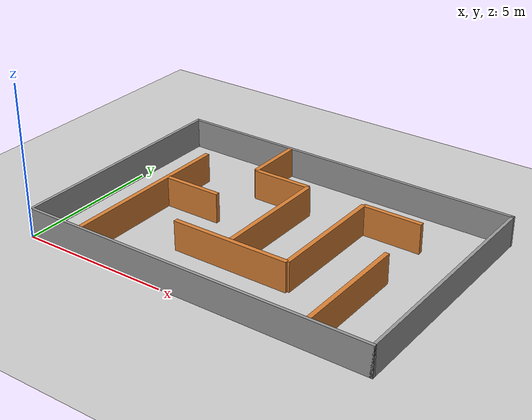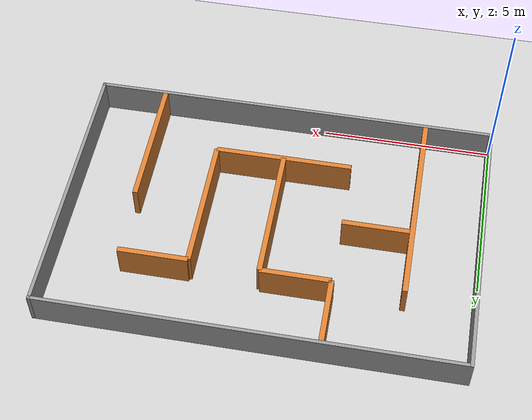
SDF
<?xml version="1.0" ?>
<sdf version="1.7">
  <world name="maze">
    <gravity>0 0 -9.8</gravity>
    <include><uri>model://ground_plane</uri></include>
    <include><uri>model://sun</uri></include>

    <!-- Outer boundary (grey) -->
    <model name="outer_s"><static>true</static><pose>6.0 0.05 0.5 0 0 0</pose><link name="l"><collision name="c"><geometry><box><size>12.0 0.10 1.0</size></box></geometry></collision><visual name="v"><geometry><box><size>12.0 0.10 1.0</size></box></geometry><material><ambient>0.6 0.6 0.6 1</ambient><diffuse>0.6 0.6 0.6 1</diffuse></material></visual></link></model>
    <model name="outer_n"><static>true</static><pose>6.0 7.95 0.5 0 0 0</pose><link name="l"><collision name="c"><geometry><box><size>12.0 0.10 1.0</size></box></geometry></collision><visual name="v"><geometry><box><size>12.0 0.10 1.0</size></box></geometry><material><ambient>0.6 0.6 0.6 1</ambient><diffuse>0.6 0.6 0.6 1</diffuse></material></visual></link></model>
    <model name="outer_w"><static>true</static><pose>0.05 4.0 0.5 0 0 0</pose><link name="l"><collision name="c"><geometry><box><size>0.10 8.0 1.0</size></box></geometry></collision><visual name="v"><geometry><box><size>0.10 8.0 1.0</size></box></geometry><material><ambient>0.6 0.6 0.6 1</ambient><diffuse>0.6 0.6 0.6 1</diffuse></material></visual></link></model>
    <model name="outer_e"><static>true</static><pose>11.95 4.0 0.5 0 0 0</pose><link name="l"><collision name="c"><geometry><box><size>0.10 8.0 1.0</size></box></geometry></collision><visual name="v"><geometry><box><size>0.10 8.0 1.0</size></box></geometry><material><ambient>0.6 0.6 0.6 1</ambient><diffuse>0.6 0.6 0.6 1</diffuse></material></visual></link></model>

    <model name="h_y2"><static>true</static><pose>6.0 2.0 0.5 0 0 0</pose>
      <link name="l"><collision name="c"><geometry><box><size>4.0 0.15 1.0</size></box></geometry></collision>
      <visual name="v"><geometry><box><size>4.0 0.15 1.0</size></box></geometry>
        <material><ambient>0.85 0.50 0.20 1</ambient><diffuse>0.85 0.50 0.20 1</diffuse></material></visual></link></model>

    <model name="h_y4"><static>true</static><pose>3.0 4.0 0.5 0 0 0</pose>
      <link name="l"><collision name="c"><geometry><box><size>2.0 0.15 1.0</size></box></geometry></collision>
      <visual name="v"><geometry><box><size>2.0 0.15 1.0</size></box></geometry>
        <material><ambient>0.85 0.50 0.20 1</ambient><diffuse>0.85 0.50 0.20 1</diffuse></material></visual></link></model>

    <model name="h_y6_a"><static>true</static><pose>5.0 6.0 0.5 0 0 0</pose>
      <link name="l"><collision name="c"><geometry><box><size>2.0 0.15 1.0</size></box></geometry></collision>
      <visual name="v"><geometry><box><size>2.0 0.15 1.0</size></box></geometry>
        <material><ambient>0.85 0.50 0.20 1</ambient><diffuse>0.85 0.50 0.20 1</diffuse></material></visual></link></model>

    <model name="h_y6_b"><static>true</static><pose>9.0 6.0 0.5 0 0 0</pose>
      <link name="l"><collision name="c"><geometry><box><size>2.0 0.15 1.0</size></box></geometry></collision>
      <visual name="v"><geometry><box><size>2.0 0.15 1.0</size></box></geometry>
        <material><ambient>0.85 0.50 0.20 1</ambient><diffuse>0.85 0.50 0.20 1</diffuse></material></visual></link></model>

    <model name="v_x2"><static>true</static><pose>2.0 3.05 0.5 0 0 0</pose>
      <link name="l"><collision name="c"><geometry><box><size>0.15 5.90 1.0</size></box></geometry></collision>
      <visual name="v"><geometry><box><size>0.15 5.90 1.0</size></box></geometry>
        <material><ambient>0.85 0.50 0.20 1</ambient><diffuse>0.85 0.50 0.20 1</diffuse></material></visual></link></model>

    <model name="v_x4"><static>true</static><pose>4.0 6.95 0.5 0 0 0</pose>
      <link name="l"><collision name="c"><geometry><box><size>0.15 1.90 1.0</size></box></geometry></collision>
      <visual name="v"><geometry><box><size>0.15 1.90 1.0</size></box></geometry>
        <material><ambient>0.85 0.50 0.20 1</ambient><diffuse>0.85 0.50 0.20 1</diffuse></material></visual></link></model>

    <model name="v_x6"><static>true</static><pose>6.0 4.0 0.5 0 0 0</pose>
      <link name="l"><collision name="c"><geometry><box><size>0.15 4.0 1.0</size></box></geometry></collision>
      <visual name="v"><geometry><box><size>0.15 4.0 1.0</size></box></geometry>
        <material><ambient>0.85 0.50 0.20 1</ambient><diffuse>0.85 0.50 0.20 1</diffuse></material></visual></link></model>

    <model name="v_x8"><static>true</static><pose>8.0 4.0 0.5 0 0 0</pose>
      <link name="l"><collision name="c"><geometry><box><size>0.15 4.0 1.0</size></box></geometry></collision>
      <visual name="v"><geometry><box><size>0.15 4.0 1.0</size></box></geometry>
        <material><ambient>0.85 0.50 0.20 1</ambient><diffuse>0.85 0.50 0.20 1</diffuse></material></visual></link></model>

    <model name="v_x10"><static>true</static><pose>10.0 2.05 0.5 0 0 0</pose>
      <link name="l"><collision name="c"><geometry><box><size>0.15 3.90 1.0</size></box></geometry></collision>
      <visual name="v"><geometry><box><size>0.15 3.90 1.0</size></box></geometry>
        <material><ambient>0.85 0.50 0.20 1</ambient><diffuse>0.85 0.50 0.20 1</diffuse></material></visual></link></model>

  </world>
</sdf>
